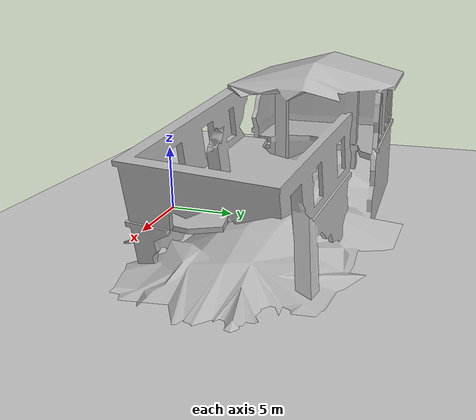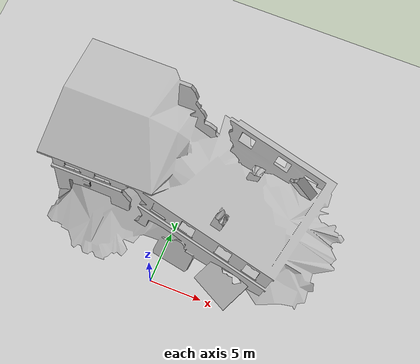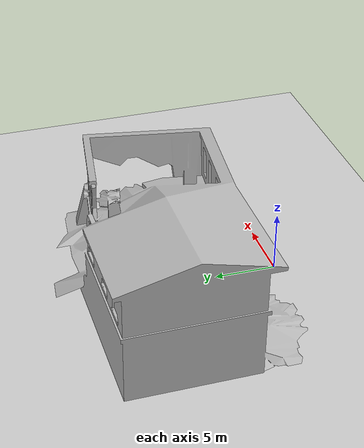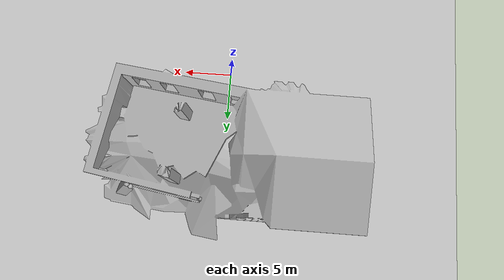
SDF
<sdf version="1.6">
 <world name="default">
  <light name="sun" type="directional">
   <pose>0 0 10 0 -0 0</pose>
   <diffuse>0.8 0.8 0.8 1</diffuse>
   <specular>0.2 0.2 0.2 1</specular>
   <attenuation>
    <range>1000</range>
    <constant>0.9</constant>
    <linear>0.01</linear>
    <quadratic>0.001</quadratic>
   </attenuation>
   <direction>-0.5 0.1 -0.9</direction>
  </light>
  <model name="ground_plane">
   <static>1</static>
   <link name="link">
    <collision name="collision">
     <geometry><plane><normal>0 0 1</normal><size>100 100</size></plane></geometry>
     <surface>
      <contact><collide_bitmask>65535</collide_bitmask></contact>
      <friction><ode><mu>100</mu><mu2>50</mu2></ode></friction>
     </surface>
    </collision>
    <visual name="visual">
     <cast_shadows>0</cast_shadows>
     <geometry><plane><normal>0 0 1</normal><size>100 100</size></plane></geometry>
     <material>
      <script><uri>file://media/materials/scripts/gazebo.material</uri><name>Gazebo/Grey</name></script>
     </material>
    </visual>
   </link>
  </model>
  <gravity>0 0 -9.8</gravity>
  <magnetic_field>6e-06 2.3e-05 -4.2e-05</magnetic_field>
  <atmosphere type="adiabatic"/>
  <physics name="default_physics" default="0" type="ode">
   <max_step_size>0.002</max_step_size>
   <real_time_factor>1</real_time_factor>
   <real_time_update_rate>500</real_time_update_rate>
  </physics>
  <scene><ambient>0.4 0.4 0.4 1</ambient><background>0.7 0.7 0.7 1</background><shadows>1</shadows></scene>
  <spherical_coordinates>
   <surface_model>EARTH_WGS84</surface_model>
   <latitude_deg>0</latitude_deg>
   <longitude_deg>0</longitude_deg>
   <elevation>0</elevation>
   <heading_deg>0</heading_deg>
  </spherical_coordinates>
  <model name="collapsed_fire_station">
   <static>1</static>
   <link name="link">
    <collision name="collision">
     <geometry><mesh><uri>model://collapsed_fire_station/meshes/collapsed_fire_station.dae</uri></mesh></geometry>
    </collision>
    <visual name="visual">
     <geometry><mesh><uri>model://collapsed_fire_station/meshes/collapsed_fire_station.dae</uri></mesh></geometry>
    </visual>
   </link>
   <pose>1.43436 8.98537 0 0 -0 0</pose>
  </model>
  <plugin name="gazebo_octomap" filename="libBuildOctomapPlugin.so"/>
  <plugin name="ros_link_attacher_plugin" filename="libgazebo_ros_link_attacher_plugin.so"/>
 </world>
</sdf>
